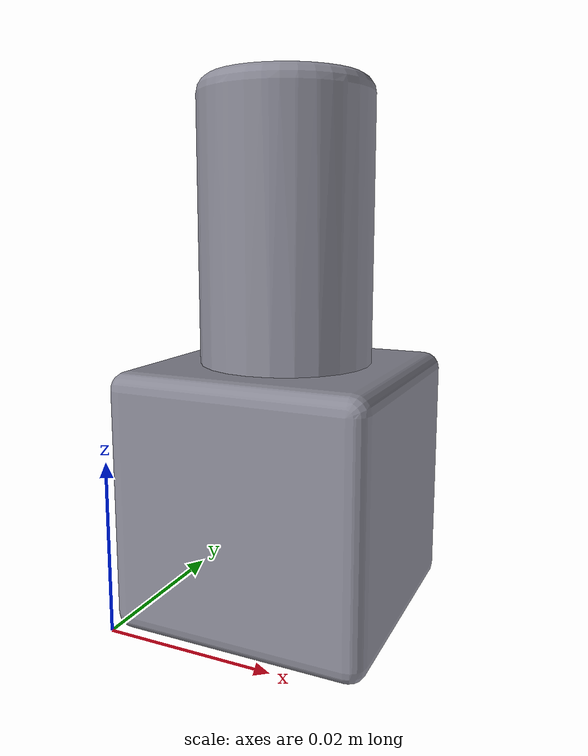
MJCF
<mujoco model="shaft1">
  <compiler angle="radian" autolimits="true" inertiafromgeom="true"
            meshdir="../assets/gearbox" texturedir="../assets/gearbox"/>

  <asset>
    <mesh name="shaft1" file="shaft1.stl" scale="1 1 1"/>
    <material name="metal_mat" rgba="0.55 0.55 0.60 1"
              specular="0.8" shininess="0.5" reflectance="0.3"/>
  </asset>

  <worldbody>
    <body name="shaft1">
      <freejoint name="shaft1_joint"/>
      <geom name="shaft1" mesh="shaft1" type="mesh" material="metal_mat"
            condim="6" friction="0.6 0.005 0.0001"
            solimp="0.99 0.99 0.001" solref="0.01 1"/>
    </body>
  </worldbody>
</mujoco>
